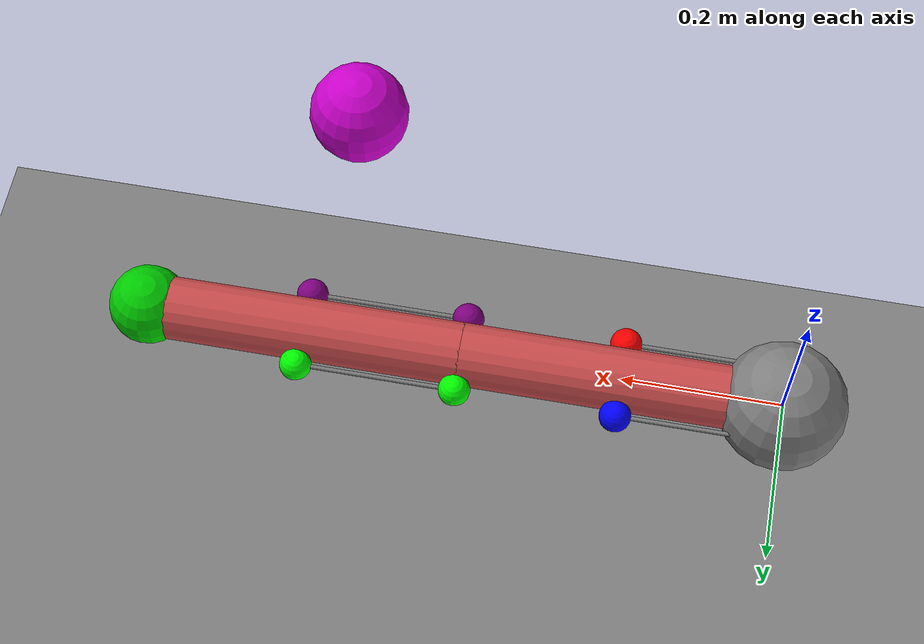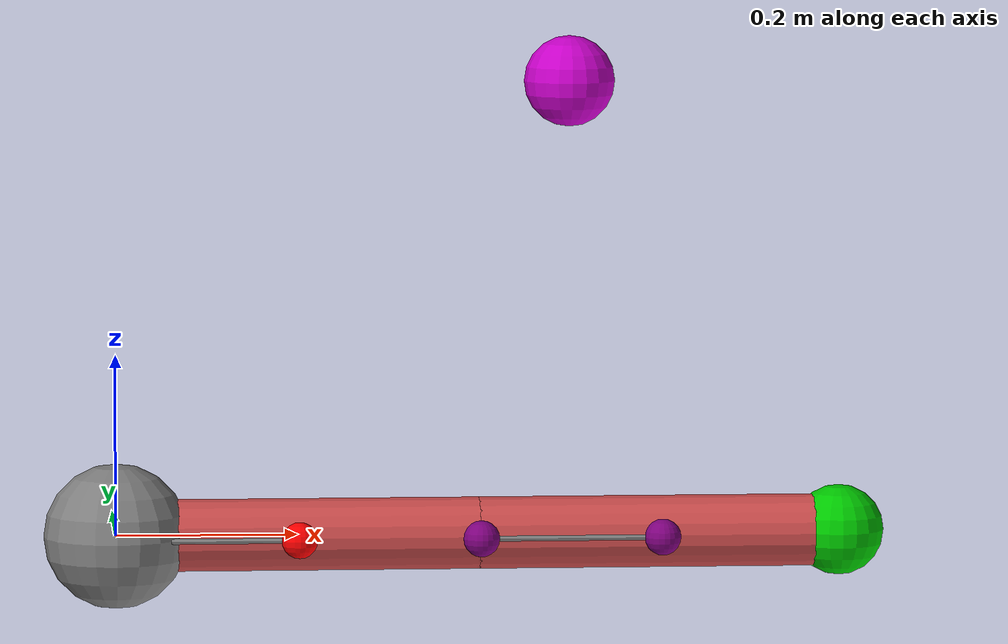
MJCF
<?xml version="1.0" ?>
<mujoco model="2joint_4muscle_arm">
  <option timestep="0.01" integrator="implicit"/>

  <default>
    <joint damping="0.1"/>
    <muscle ctrllimited="true" ctrlrange="0 1"/>
    <geom rgba="0.8 0.3 0.3 1"/>
  </default>

  <worldbody>
    <!-- Ground plane -->
    <geom name="floor" pos="0 0 -0.5" size="4 4 0.1" type="plane" rgba="0.5 0.5 0.5 1"/>

    <!-- Base of the arm -->
    <body name="base" pos="0 0 0">
      <geom name="base" type="sphere" size="0.08" rgba="0.5 0.5 0.5 1"/>
      <joint name="root" type="free" limited="false"/>

      <!-- First arm segment -->
      <body name="upper_arm" pos="0 0 0">
        <joint name="shoulder" type="hinge" axis="0 1 0" range="-90 90"/>
        <geom name="upper_arm" type="capsule" size="0.04" fromto="0 0 0 0.4 0 0"/>

        <!-- Muscle attachment sites for upper arm -->
        <site name="shoulder_flexor_origin" pos="0 0.05 0" size="0.02" rgba="0 0 1 1"/>
        <site name="shoulder_extensor_origin" pos="0 -0.05 0" size="0.02" rgba="1 0 0 1"/>
        <site name="shoulder_flexor_insertion" pos="0.2 0.05 0" size="0.02" rgba="0 0 1 1"/>
        <site name="shoulder_extensor_insertion" pos="0.2 -0.05 0" size="0.02" rgba="1 0 0 1"/>
        <site name="elbow_flexor_origin" pos="0.4 0.05 0" size="0.02" rgba="0 1 0 1"/>
        <site name="elbow_extensor_origin" pos="0.4 -0.05 0" size="0.02" rgba="0.5 0 0.5 1"/>

        <!-- Second arm segment -->
        <body name="forearm" pos="0.4 0 0">
          <joint name="elbow" type="hinge" axis="0 1 0" range="-90 90"/>
          <geom name="forearm" type="capsule" size="0.04" fromto="0 0 0 0.4 0 0"/>

          <!-- Muscle attachment sites for forearm -->
          <site name="elbow_flexor_insertion" pos="0.2 0.05 0" size="0.02" rgba="0 1 0 1"/>
          <site name="elbow_extensor_insertion" pos="0.2 -0.05 0" size="0.02" rgba="0.5 0 0.5 1"/>

          <!-- End effector -->
          <site name="end_effector" pos="0.4 0 0" size="0.05" rgba="0 0.8 0 1"/>
        </body>
      </body>
    </body>

    <!-- Target site -->
    <site name="target" pos="0.5 0 0.5" size="0.05" rgba="0.8 0 0.8 1"/>
  </worldbody>

  <tendon>
    <!-- Shoulder flexor muscle -->
    <spatial name="shoulder_flexor">
      <site site="shoulder_flexor_origin"/>
      <geom geom="upper_arm"/>
      <site site="shoulder_flexor_insertion"/>
    </spatial>

    <!-- Shoulder extensor muscle -->
    <spatial name="shoulder_extensor">
      <site site="shoulder_extensor_origin"/>
      <geom geom="upper_arm"/>
      <site site="shoulder_extensor_insertion"/>
    </spatial>

    <!-- Elbow flexor muscle -->
    <spatial name="elbow_flexor">
      <site site="elbow_flexor_origin"/>
      <geom geom="forearm"/>
      <site site="elbow_flexor_insertion"/>
    </spatial>

    <!-- Elbow extensor muscle -->
    <spatial name="elbow_extensor">
      <site site="elbow_extensor_origin"/>
      <geom geom="forearm"/>
      <site site="elbow_extensor_insertion"/>
    </spatial>
  </tendon>

  <actuator>
    <muscle name="shoulder_flexor" tendon="shoulder_flexor" />
    <muscle name="shoulder_extensor" tendon="shoulder_extensor" />
    <muscle name="elbow_flexor" tendon="elbow_flexor" />
    <muscle name="elbow_extensor" tendon="elbow_extensor" />
  </actuator>

  <sensor>
    <!-- Muscle length sensors -->
    <muscle name="shoulder_flexor_length" muscle="shoulder_flexor" type="length"/>
    <muscle name="shoulder_extensor_length" muscle="shoulder_extensor" type="length"/>
    <muscle name="elbow_flexor_length" muscle="elbow_flexor" type="length"/>
    <muscle name="elbow_extensor_length" muscle="elbow_extensor" type="length"/>

    <!-- Muscle velocity sensors -->
    <muscle name="shoulder_flexor_velocity" muscle="shoulder_flexor" type="velocity"/>
    <muscle name="shoulder_extensor_velocity" muscle="shoulder_extensor" type="velocity"/>
    <muscle name="elbow_flexor_velocity" muscle="elbow_flexor" type="velocity"/>
    <muscle name="elbow_extensor_velocity" muscle="elbow_extensor" type="velocity"/>

    <!-- Muscle force sensors -->
    <muscle name="shoulder_flexor_force" muscle="shoulder_flexor" type="force"/>
    <muscle name="shoulder_extensor_force" muscle="shoulder_extensor" type="force"/>
    <muscle name="elbow_flexor_force" muscle="elbow_flexor" type="force"/>
    <muscle name="elbow_extensor_force" muscle="elbow_extensor" type="force"/>

    <!-- End effector position sensor -->
    <framepos name="end_effector_pos" objtype="site" objname="end_effector"/>

    <!-- Target position sensor -->
    <framepos name="target_pos" objtype="site" objname="target"/>
  </sensor>
</mujoco>
